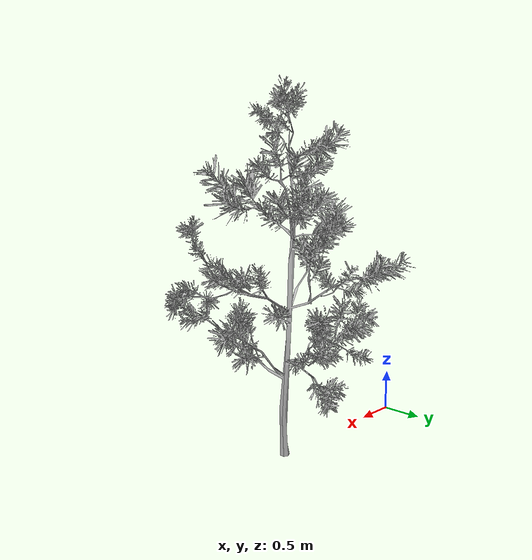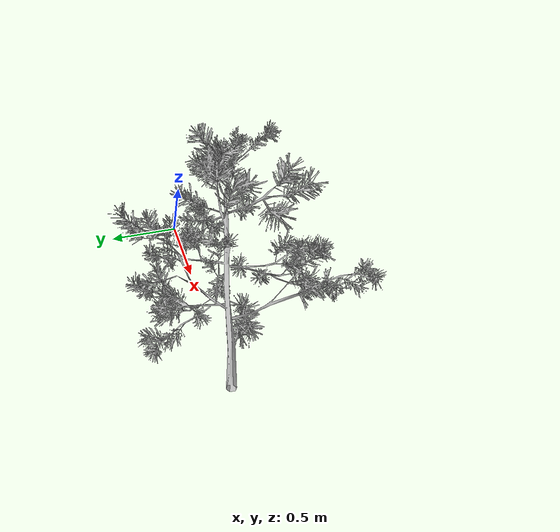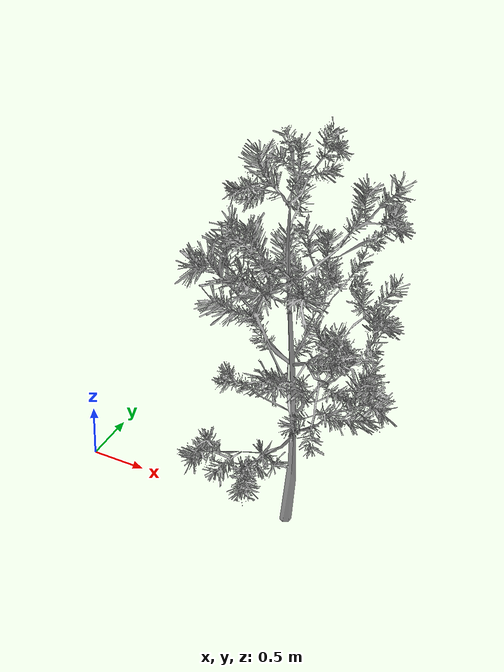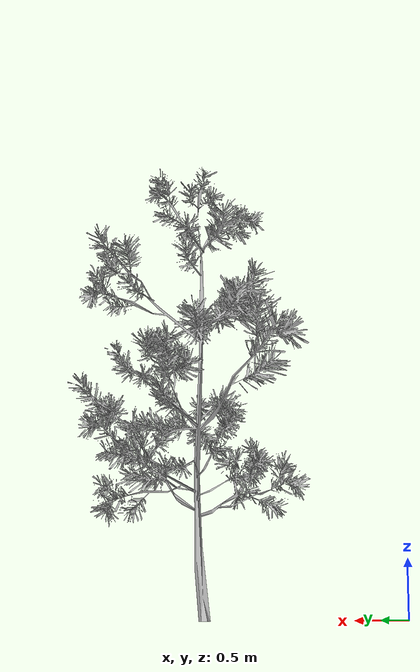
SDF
<sdf version="1.9">
  <model name="pine_scot">
    <static>true</static>
    <link name="pinelink">
      <visual name="pine_sapling_small_b">
        <plugin filename="gz-sim-label-system" name="gz::sim::systems::Label">
          <label>8</label>
        </plugin>
        <geometry>
          <mesh>
            <uri>meshes/scot_pine/Scot_pine.dae</uri>
            <scale>2 2 2</scale>
          </mesh>
        </geometry>
      </visual>
      <collision name="collision">
        <geometry>
          <mesh>
            <uri>meshes/scot_pine/Scot_pine.dae</uri>
            <scale>2 2 2</scale>
          </mesh>
        </geometry>
      </collision>
    </link>
  </model>
</sdf>
